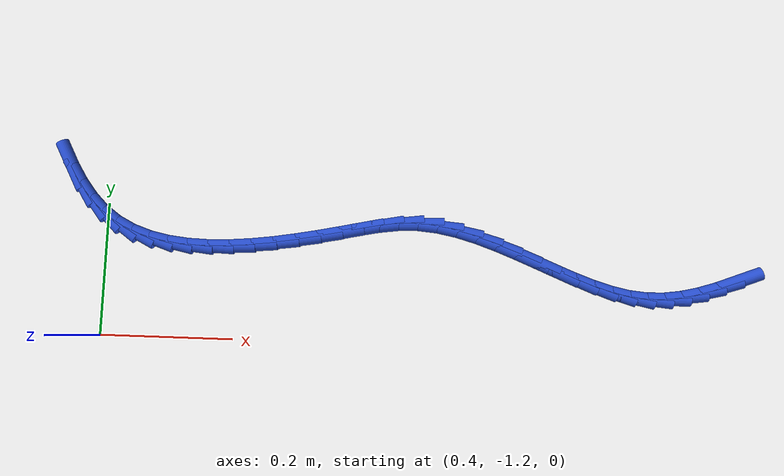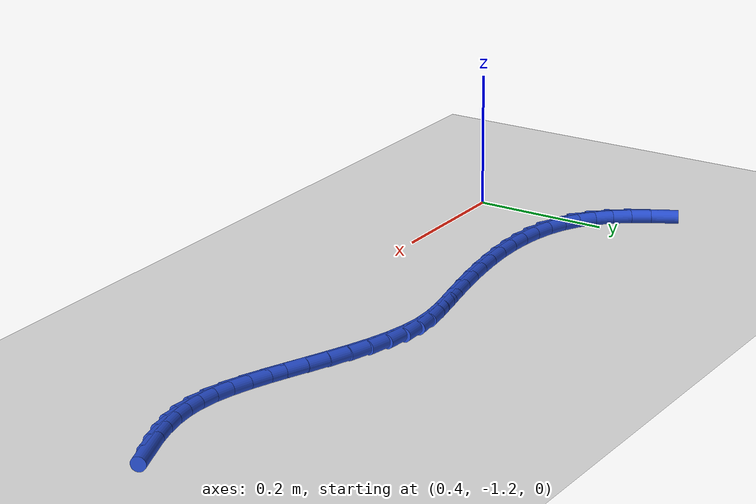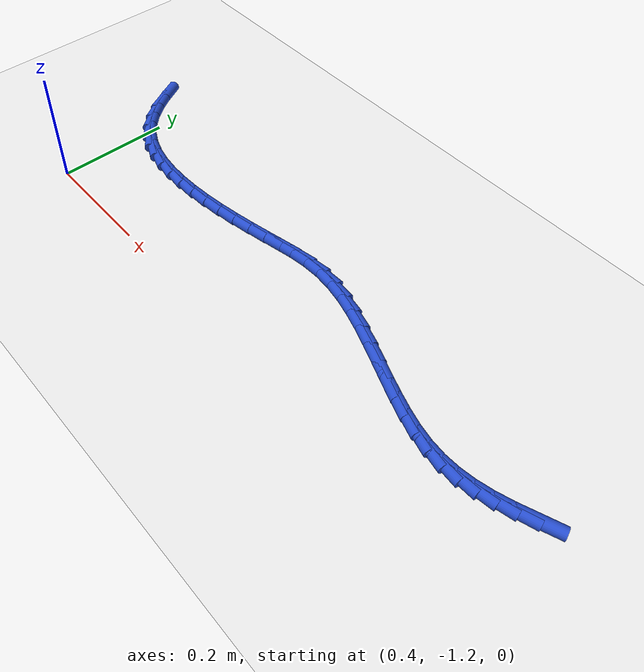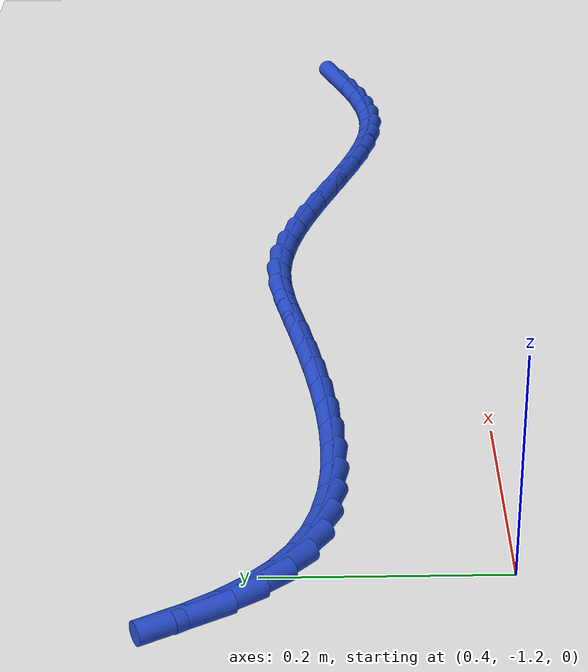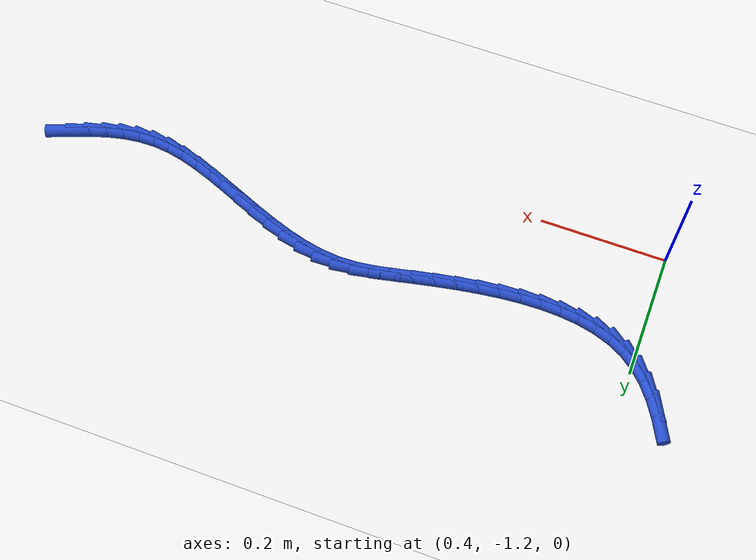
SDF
<sdf version="1.6">
 <world name="default">
  <model name="ground_plane">
   <static>1</static>
   <link name="link">
    <collision name="collision">
     <geometry><plane><normal>0 0 1</normal><size>100 100</size></plane></geometry>
     <surface><friction><ode><mu>100</mu><mu2>50</mu2></ode></friction></surface>
    </collision>
    <visual name="visual">
     <cast_shadows>0</cast_shadows>
     <geometry><plane><normal>0 0 1</normal><size>100 100</size></plane></geometry>
     <material>
      <script><uri>file://media/materials/scripts/gazebo.material</uri><name>Gazebo/WhiteGlow</name></script>
     </material>
    </visual>
   </link>
  </model>
  <model name="line">
   <link name="link_221">
    <pose>1.3539317969555378 -1.086209432170767 0.01 0 1.57 0.36897737327826</pose>
    <collision name="collision">
     <geometry><cylinder><radius>0.01</radius><length>0.08</length></cylinder></geometry>
    </collision>
    <visual name="visual">
     <material>
      <script><name>Gazebo/Blue</name><uri>file://media/materials/scripts/gazebo.material</uri></script>
     </material>
     <geometry><cylinder><radius>0.01</radius><length>0.08</length></cylinder></geometry>
    </visual>
   </link>
   <link name="link_222">
    <pose>1.3247195263203724 -1.0975054421172123 0.01 0 1.57 0.30889797729052976</pose>
    <collision name="collision">
     <geometry><cylinder><radius>0.01</radius><length>0.08</length></cylinder></geometry>
    </collision>
    <visual name="visual">
     <material>
      <script><name>Gazebo/Blue</name><uri>file://media/materials/scripts/gazebo.material</uri></script>
     </material>
     <geometry><cylinder><radius>0.01</radius><length>0.08</length></cylinder></geometry>
    </visual>
   </link>
   <link name="link_223">
    <pose>1.297022980384793 -1.106343765339379 0.01 0 1.57 0.22943563027066877</pose>
    <collision name="collision">
     <geometry><cylinder><radius>0.01</radius><length>0.08</length></cylinder></geometry>
    </collision>
    <visual name="visual">
     <material>
      <script><name>Gazebo/Blue</name><uri>file://media/materials/scripts/gazebo.material</uri></script>
     </material>
     <geometry><cylinder><radius>0.01</radius><length>0.08</length></cylinder></geometry>
    </visual>
   </link>
   <link name="link_224">
    <pose>1.2703743296770162 -1.1125675078980921 0.01 0 1.57 0.13166407085398793</pose>
    <collision name="collision">
     <geometry><cylinder><radius>0.01</radius><length>0.08</length></cylinder></geometry>
    </collision>
    <visual name="visual">
     <material>
      <script><name>Gazebo/Blue</name><uri>file://media/materials/scripts/gazebo.material</uri></script>
     </material>
     <geometry><cylinder><radius>0.01</radius><length>0.08</length></cylinder></geometry>
    </visual>
   </link>
   <link name="link_225">
    <pose>1.244305744725257 -1.1160197758541757 0.01 0 1.57 0.0201811238885643</pose>
    <collision name="collision">
     <geometry><cylinder><radius>0.01</radius><length>0.08</length></cylinder></geometry>
    </collision>
    <visual name="visual">
     <material>
      <script><name>Gazebo/Blue</name><uri>file://media/materials/scripts/gazebo.material</uri></script>
     </material>
     <geometry><cylinder><radius>0.01</radius><length>0.08</length></cylinder></geometry>
    </visual>
   </link>
   <link name="link_226">
    <pose>1.2183493960577314 -1.1165436752684545 0.01 0 1.57 -0.09703849174963586</pose>
    <collision name="collision">
     <geometry><cylinder><radius>0.01</radius><length>0.08</length></cylinder></geometry>
    </collision>
    <visual name="visual">
     <material>
      <script><name>Gazebo/Blue</name><uri>file://media/materials/scripts/gazebo.material</uri></script>
     </material>
     <geometry><cylinder><radius>0.01</radius><length>0.08</length></cylinder></geometry>
    </visual>
   </link>
   <link name="link_227">
    <pose>1.192037490170416 -1.1139823630490409 0.01 0 1.57 -0.2058039290348446</pose>
    <collision name="collision">
     <geometry><cylinder><radius>0.01</radius><length>0.08</length></cylinder></geometry>
    </collision>
    <visual name="visual">
     <material>
      <script><name>Gazebo/Blue</name><uri>file://media/materials/scripts/gazebo.material</uri></script>
     </material>
     <geometry><cylinder><radius>0.01</radius><length>0.08</length></cylinder></geometry>
    </visual>
   </link>
   <link name="link_228">
    <pose>1.1650172779086445 -1.108341633230765 0.01 0 1.57 -0.28739728120259844</pose>
    <collision name="collision">
     <geometry><cylinder><radius>0.01</radius><length>0.08</length></cylinder></geometry>
    </collision>
    <visual name="visual">
     <material>
      <script><name>Gazebo/Blue</name><uri>file://media/materials/scripts/gazebo.material</uri></script>
     </material>
     <geometry><cylinder><radius>0.01</radius><length>0.08</length></cylinder></geometry>
    </visual>
   </link>
   <link name="link_229">
    <pose>1.1373063479654058 -1.1001508230193526 0.01 0 1.57 -0.3428926473825877</pose>
    <collision name="collision">
     <geometry><cylinder><radius>0.01</radius><length>0.08</length></cylinder></geometry>
    </collision>
    <visual name="visual">
     <material>
      <script><name>Gazebo/Blue</name><uri>file://media/materials/scripts/gazebo.material</uri></script>
     </material>
     <geometry><cylinder><radius>0.01</radius><length>0.08</length></cylinder></geometry>
    </visual>
   </link>
   <link name="link_230">
    <pose>1.1089966635667994 -1.0900444122062687 0.01 0 1.57 -0.3763394121316632</pose>
    <collision name="collision">
     <geometry><cylinder><radius>0.01</radius><length>0.08</length></cylinder></geometry>
    </collision>
    <visual name="visual">
     <material>
      <script><name>Gazebo/Blue</name><uri>file://media/materials/scripts/gazebo.material</uri></script>
     </material>
     <geometry><cylinder><radius>0.01</radius><length>0.08</length></cylinder></geometry>
    </visual>
   </link>
   <link name="link_231">
    <pose>1.080180187938925 -1.0786568805829775 0.01 0 1.57 -0.3905413307176184</pose>
    <collision name="collision">
     <geometry><cylinder><radius>0.01</radius><length>0.08</length></cylinder></geometry>
    </collision>
    <visual name="visual">
     <material>
      <script><name>Gazebo/Blue</name><uri>file://media/materials/scripts/gazebo.material</uri></script>
     </material>
     <geometry><cylinder><radius>0.01</radius><length>0.08</length></cylinder></geometry>
    </visual>
   </link>
   <link name="link_232">
    <pose>1.0509488843078818 -1.0666227079409434 0.01 0 1.57 -0.38704247389796376</pose>
    <collision name="collision">
     <geometry><cylinder><radius>0.01</radius><length>0.08</length></cylinder></geometry>
    </collision>
    <visual name="visual">
     <material>
      <script><name>Gazebo/Blue</name><uri>file://media/materials/scripts/gazebo.material</uri></script>
     </material>
     <geometry><cylinder><radius>0.01</radius><length>0.08</length></cylinder></geometry>
    </visual>
   </link>
   <link name="link_233">
    <pose>1.021394715899771 -1.054576374071631 0.01 0 1.57 -0.36624399689056925</pose>
    <collision name="collision">
     <geometry><cylinder><radius>0.01</radius><length>0.08</length></cylinder></geometry>
    </collision>
    <visual name="visual">
     <material>
      <script><name>Gazebo/Blue</name><uri>file://media/materials/scripts/gazebo.material</uri></script>
     </material>
     <geometry><cylinder><radius>0.01</radius><length>0.08</length></cylinder></geometry>
    </visual>
   </link>
   <link name="link_234">
    <pose>0.9916096459406896 -1.0431523587665044 0.01 0 1.57 -0.32753042746382466</pose>
    <collision name="collision">
     <geometry><cylinder><radius>0.01</radius><length>0.08</length></cylinder></geometry>
    </collision>
    <visual name="visual">
     <material>
      <script><name>Gazebo/Blue</name><uri>file://media/materials/scripts/gazebo.material</uri></script>
     </material>
     <geometry><cylinder><radius>0.01</radius><length>0.08</length></cylinder></geometry>
    </visual>
   </link>
   <link name="link_235">
    <pose>0.9616856376567382 -1.0329851418170277 0.01 0 1.57 -0.26941804518408424</pose>
    <collision name="collision">
     <geometry><cylinder><radius>0.01</radius><length>0.08</length></cylinder></geometry>
    </collision>
    <visual name="visual">
     <material>
      <script><name>Gazebo/Blue</name><uri>file://media/materials/scripts/gazebo.material</uri></script>
     </material>
     <geometry><cylinder><radius>0.01</radius><length>0.08</length></cylinder></geometry>
    </visual>
   </link>
   <link name="link_236">
    <pose>0.9317146542740167 -1.024709203014666 0.01 0 1.57 -0.1898330206165446</pose>
    <collision name="collision">
     <geometry><cylinder><radius>0.01</radius><length>0.08</length></cylinder></geometry>
    </collision>
    <visual name="visual">
     <material>
      <script><name>Gazebo/Blue</name><uri>file://media/materials/scripts/gazebo.material</uri></script>
     </material>
     <geometry><cylinder><radius>0.01</radius><length>0.08</length></cylinder></geometry>
    </visual>
   </link>
   <link name="link_237">
    <pose>0.901788659018624 -1.018959022150883 0.01 0 1.57 -0.08672472814688366</pose>
    <collision name="collision">
     <geometry><cylinder><radius>0.01</radius><length>0.08</length></cylinder></geometry>
    </collision>
    <visual name="visual">
     <material>
      <script><name>Gazebo/Blue</name><uri>file://media/materials/scripts/gazebo.material</uri></script>
     </material>
     <geometry><cylinder><radius>0.01</radius><length>0.08</length></cylinder></geometry>
    </visual>
   </link>
   <link name="link_238">
    <pose>0.8719996151166604 -1.0163690790171436 0.01 0 1.57 0.035254394325404954</pose>
    <collision name="collision">
     <geometry><cylinder><radius>0.01</radius><length>0.08</length></cylinder></geometry>
    </collision>
    <visual name="visual">
     <material>
      <script><name>Gazebo/Blue</name><uri>file://media/materials/scripts/gazebo.material</uri></script>
     </material>
     <geometry><cylinder><radius>0.01</radius><length>0.08</length></cylinder></geometry>
    </visual>
   </link>
   <link name="link_239">
    <pose>0.8423970505710086 -1.0174131320780728 0.01 0 1.57 0.13563716358634426</pose>
    <collision name="collision">
     <geometry><cylinder><radius>0.01</radius><length>0.08</length></cylinder></geometry>
    </collision>
    <visual name="visual">
     <material>
      <script><name>Gazebo/Blue</name><uri>file://media/materials/scripts/gazebo.material</uri></script>
     </material>
     <geometry><cylinder><radius>0.01</radius><length>0.08</length></cylinder></geometry>
    </visual>
   </link>
   <link name="link_240">
    <pose>0.8127389478261269 -1.02146072529364 0.01 0 1.57 0.19551057104202496</pose>
    <collision name="collision">
     <geometry><cylinder><radius>0.01</radius><length>0.08</length></cylinder></geometry>
    </collision>
    <visual name="visual">
     <material>
      <script><name>Gazebo/Blue</name><uri>file://media/materials/scripts/gazebo.material</uri></script>
     </material>
     <geometry><cylinder><radius>0.01</radius><length>0.08</length></cylinder></geometry>
    </visual>
   </link>
   <link name="link_241">
    <pose>0.7826607829011178 -1.0274174155456945 0.01 0 1.57 0.2159469636778076</pose>
    <collision name="collision">
     <geometry><cylinder><radius>0.01</radius><length>0.08</length></cylinder></geometry>
    </collision>
    <visual name="visual">
     <material>
      <script><name>Gazebo/Blue</name><uri>file://media/materials/scripts/gazebo.material</uri></script>
     </material>
     <geometry><cylinder><radius>0.01</radius><length>0.08</length></cylinder></geometry>
    </visual>
   </link>
   <link name="link_242">
    <pose>0.7517980835104491 -1.034187690015193 0.01 0 1.57 0.2070844223081946</pose>
    <collision name="collision">
     <geometry><cylinder><radius>0.01</radius><length>0.08</length></cylinder></geometry>
    </collision>
    <visual name="visual">
     <material>
      <script><name>Gazebo/Blue</name><uri>file://media/materials/scripts/gazebo.material</uri></script>
     </material>
     <geometry><cylinder><radius>0.01</radius><length>0.08</length></cylinder></geometry>
    </visual>
   </link>
   <link name="link_243">
    <pose>0.719964523283764 -1.040875803145908 0.01 0 1.57 0.18850707805074987</pose>
    <collision name="collision">
     <geometry><cylinder><radius>0.01</radius><length>0.08</length></cylinder></geometry>
    </collision>
    <visual name="visual">
     <material>
      <script><name>Gazebo/Blue</name><uri>file://media/materials/scripts/gazebo.material</uri></script>
     </material>
     <geometry><cylinder><radius>0.01</radius><length>0.08</length></cylinder></geometry>
    </visual>
   </link>
   <link name="link_244">
    <pose>0.6874184760069199 -1.0470846822414037 0.01 0 1.57 0.16279740039490356</pose>
    <collision name="collision">
     <geometry><cylinder><radius>0.01</radius><length>0.08</length></cylinder></geometry>
    </collision>
    <visual name="visual">
     <material>
      <script><name>Gazebo/Blue</name><uri>file://media/materials/scripts/gazebo.material</uri></script>
     </material>
     <geometry><cylinder><radius>0.01</radius><length>0.08</length></cylinder></geometry>
    </visual>
   </link>
   <link name="link_245">
    <pose>0.6544865608525631 -1.0524937828495513 0.01 0 1.57 0.12927280923826037</pose>
    <collision name="collision">
     <geometry><cylinder><radius>0.01</radius><length>0.08</length></cylinder></geometry>
    </collision>
    <visual name="visual">
     <material>
      <script><name>Gazebo/Blue</name><uri>file://media/materials/scripts/gazebo.material</uri></script>
     </material>
     <geometry><cylinder><radius>0.01</radius><length>0.08</length></cylinder></geometry>
    </visual>
   </link>
   <link name="link_246">
    <pose>0.6214953969933404 -1.056782560518221 0.01 0 1.57 0.0868100075442292</pose>
    <collision name="collision">
     <geometry><cylinder><radius>0.01</radius><length>0.08</length></cylinder></geometry>
    </collision>
    <visual name="visual">
     <material>
      <script><name>Gazebo/Blue</name><uri>file://media/materials/scripts/gazebo.material</uri></script>
     </material>
     <geometry><cylinder><radius>0.01</radius><length>0.08</length></cylinder></geometry>
    </visual>
   </link>
   <link name="link_247">
    <pose>0.5887716036018985 -1.0596304707952837 0.01 0 1.57 0.033803025472891914</pose>
    <collision name="collision">
     <geometry><cylinder><radius>0.01</radius><length>0.08</length></cylinder></geometry>
    </collision>
    <visual name="visual">
     <material>
      <script><name>Gazebo/Blue</name><uri>file://media/materials/scripts/gazebo.material</uri></script>
     </material>
     <geometry><cylinder><radius>0.01</radius><length>0.08</length></cylinder></geometry>
    </visual>
   </link>
   <link name="link_248">
    <pose>0.5566417998508849 -1.0607169692286098 0.01 0 1.57 -0.03188549035391376</pose>
    <collision name="collision">
     <geometry><cylinder><radius>0.01</radius><length>0.08</length></cylinder></geometry>
    </collision>
    <visual name="visual">
     <material>
      <script><name>Gazebo/Blue</name><uri>file://media/materials/scripts/gazebo.material</uri></script>
     </material>
     <geometry><cylinder><radius>0.01</radius><length>0.08</length></cylinder></geometry>
    </visual>
   </link>
   <link name="link_249">
    <pose>0.5254326049129442 -1.05972151136607 0.01 0 1.57 -0.11292657342308754</pose>
    <collision name="collision">
     <geometry><cylinder><radius>0.01</radius><length>0.08</length></cylinder></geometry>
    </collision>
    <visual name="visual">
     <material>
      <script><name>Gazebo/Blue</name><uri>file://media/materials/scripts/gazebo.material</uri></script>
     </material>
     <geometry><cylinder><radius>0.01</radius><length>0.08</length></cylinder></geometry>
    </visual>
   </link>
   <link name="link_250">
    <pose>0.495470637960724 -1.0563235527555348 0.01 0 1.57 -0.21236725794539543</pose>
    <collision name="collision">
     <geometry><cylinder><radius>0.01</radius><length>0.08</length></cylinder></geometry>
    </collision>
    <visual name="visual">
     <material>
      <script><name>Gazebo/Blue</name><uri>file://media/materials/scripts/gazebo.material</uri></script>
     </material>
     <geometry><cylinder><radius>0.01</radius><length>0.08</length></cylinder></geometry>
    </visual>
   </link>
   <link name="link_251">
    <pose>0.46708251816687085 -1.050202548944875 0.01 0 1.57 -0.33310237066656284</pose>
    <collision name="collision">
     <geometry><cylinder><radius>0.01</radius><length>0.08</length></cylinder></geometry>
    </collision>
    <visual name="visual">
     <material>
      <script><name>Gazebo/Blue</name><uri>file://media/materials/scripts/gazebo.material</uri></script>
     </material>
     <geometry><cylinder><radius>0.01</radius><length>0.08</length></cylinder></geometry>
    </visual>
   </link>
   <link name="link_252">
    <pose>0.44059486470403153 -1.041037955481961 0.01 0 1.57 -0.4766999219148165</pose>
    <collision name="collision">
     <geometry><cylinder><radius>0.01</radius><length>0.08</length></cylinder></geometry>
    </collision>
    <visual name="visual">
     <material>
      <script><name>Gazebo/Blue</name><uri>file://media/materials/scripts/gazebo.material</uri></script>
     </material>
     <geometry><cylinder><radius>0.01</radius><length>0.08</length></cylinder></geometry>
    </visual>
   </link>
   <link name="link_253">
    <pose>0.4163342967448525 -1.0285092279146637 0.01 0 1.57 -0.6386577539572806</pose>
    <collision name="collision">
     <geometry><cylinder><radius>0.01</radius><length>0.08</length></cylinder></geometry>
    </collision>
    <visual name="visual">
     <material>
      <script><name>Gazebo/Blue</name><uri>file://media/materials/scripts/gazebo.material</uri></script>
     </material>
     <geometry><cylinder><radius>0.01</radius><length>0.08</length></cylinder></geometry>
    </visual>
   </link>
   <link name="link_254">
    <pose>0.3945774262021074 -1.012355630736835 0.01 0 1.57 -0.7901881139151108</pose>
    <collision name="collision">
     <geometry><cylinder><radius>0.01</radius><length>0.08</length></cylinder></geometry>
    </collision>
    <visual name="visual">
     <material>
      <script><name>Gazebo/Blue</name><uri>file://media/materials/scripts/gazebo.material</uri></script>
     </material>
     <geometry><cylinder><radius>0.01</radius><length>0.08</length></cylinder></geometry>
    </visual>
   </link>
   <link name="link_255">
    <pose>0.37520189934676795 -0.9927935934495635 0.01 0 1.57 -0.9156548215370253</pose>
    <collision name="collision">
     <geometry><cylinder><radius>0.01</radius><length>0.08</length></cylinder></geometry>
    </collision>
    <visual name="visual">
     <material>
      <script><name>Gazebo/Blue</name><uri>file://media/materials/scripts/gazebo.material</uri></script>
     </material>
     <geometry><cylinder><radius>0.01</radius><length>0.08</length></cylinder></geometry>
    </visual>
   </link>
   <link name="link_256">
    <pose>0.35789436406673963 -0.9702679806252535 0.01 0 1.57 -1.0150078900584847</pose>
    <collision name="collision">
     <geometry><cylinder><radius>0.01</radius><length>0.08</length></cylinder></geometry>
    </collision>
    <visual name="visual">
     <material>
      <script><name>Gazebo/Blue</name><uri>file://media/materials/scripts/gazebo.material</uri></script>
     </material>
     <geometry><cylinder><radius>0.01</radius><length>0.08</length></cylinder></geometry>
    </visual>
   </link>
   <link name="link_257">
    <pose>0.34234027320542637 -0.9452250861158226 0.01 0 1.57 -1.09081337657723</pose>
    <collision name="collision">
     <geometry><cylinder><radius>0.01</radius><length>0.08</length></cylinder></geometry>
    </collision>
    <visual name="visual">
     <material>
      <script><name>Gazebo/Blue</name><uri>file://media/materials/scripts/gazebo.material</uri></script>
     </material>
     <geometry><cylinder><radius>0.01</radius><length>0.08</length></cylinder></geometry>
    </visual>
   </link>
  </model>
 </world>
</sdf>
